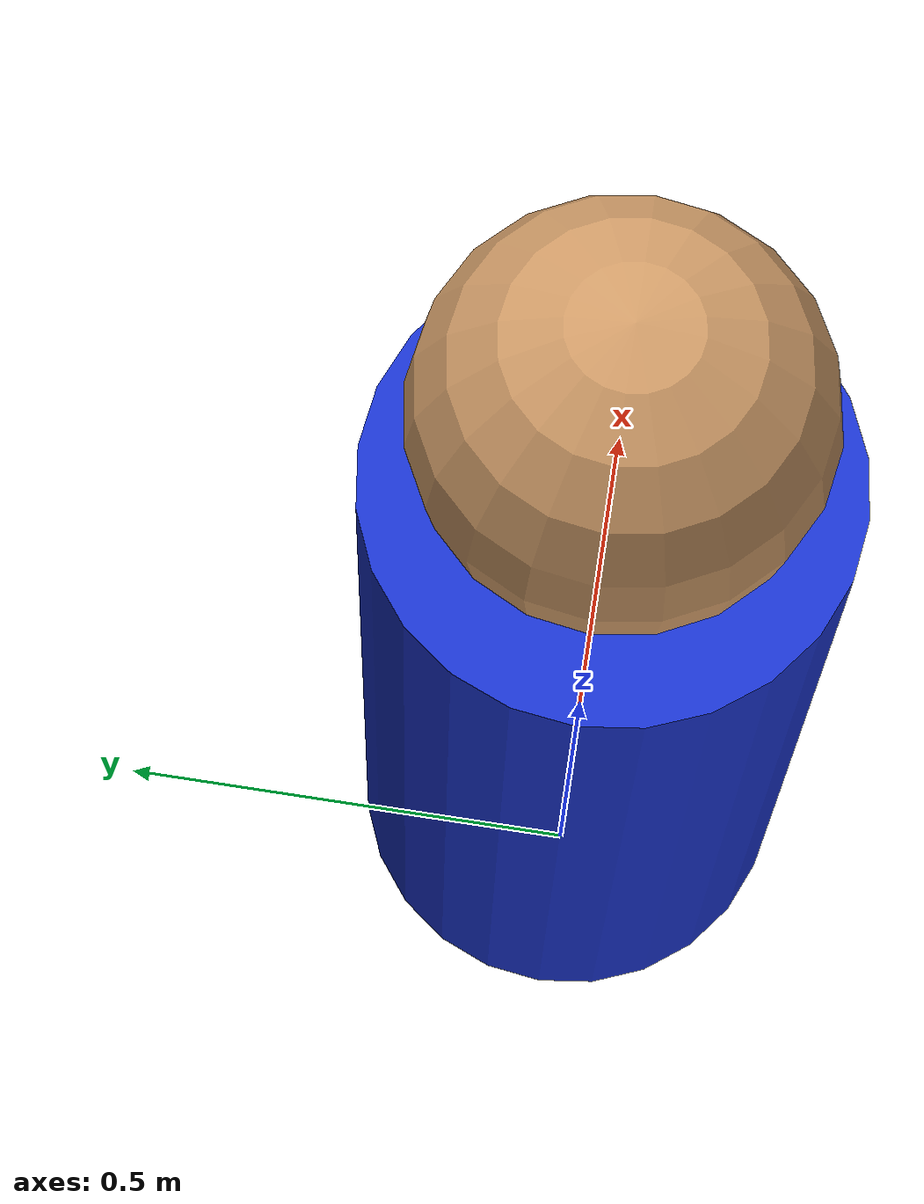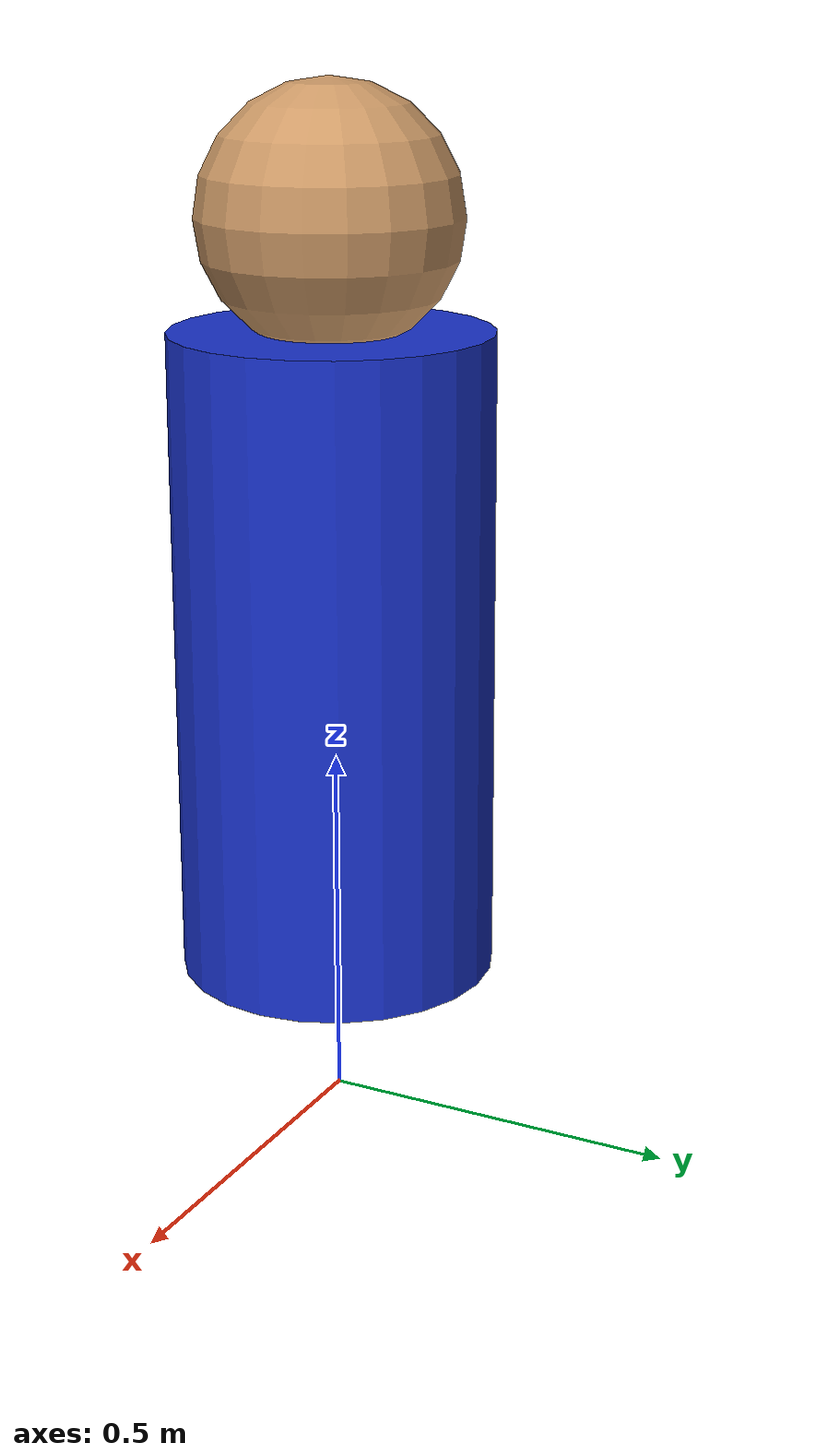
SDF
<?xml version="1.0"?>

<sdf version="1.9">

  <model name="survivor">

    <static>true</static>

    <link name="body">

      <visual name="torso">
        <pose>0 0 0.65 0 0 0</pose>

        <geometry>
          <cylinder>
            <radius>0.22</radius>
            <length>0.9</length>
          </cylinder>
        </geometry>

        <material>
          <ambient>0.1 0.2 0.8 1</ambient>
          <diffuse>0.1 0.2 0.8 1</diffuse>
        </material>

      </visual>

      <visual name="head">

        <pose>0 0 1.25 0 0 0</pose>

        <geometry>
          <sphere>
            <radius>0.18</radius>
          </sphere>
        </geometry>

        <material>
          <ambient>0.8 0.6 0.4 1</ambient>
          <diffuse>0.8 0.6 0.4 1</diffuse>
        </material>

      </visual>

      <collision name="body_collision">

        <pose>0 0 0.65 0 0 0</pose>

        <geometry>
          <cylinder>
            <radius>0.22</radius>
            <length>0.9</length>
          </cylinder>
        </geometry>

      </collision>

    </link>

  </model>

</sdf>
